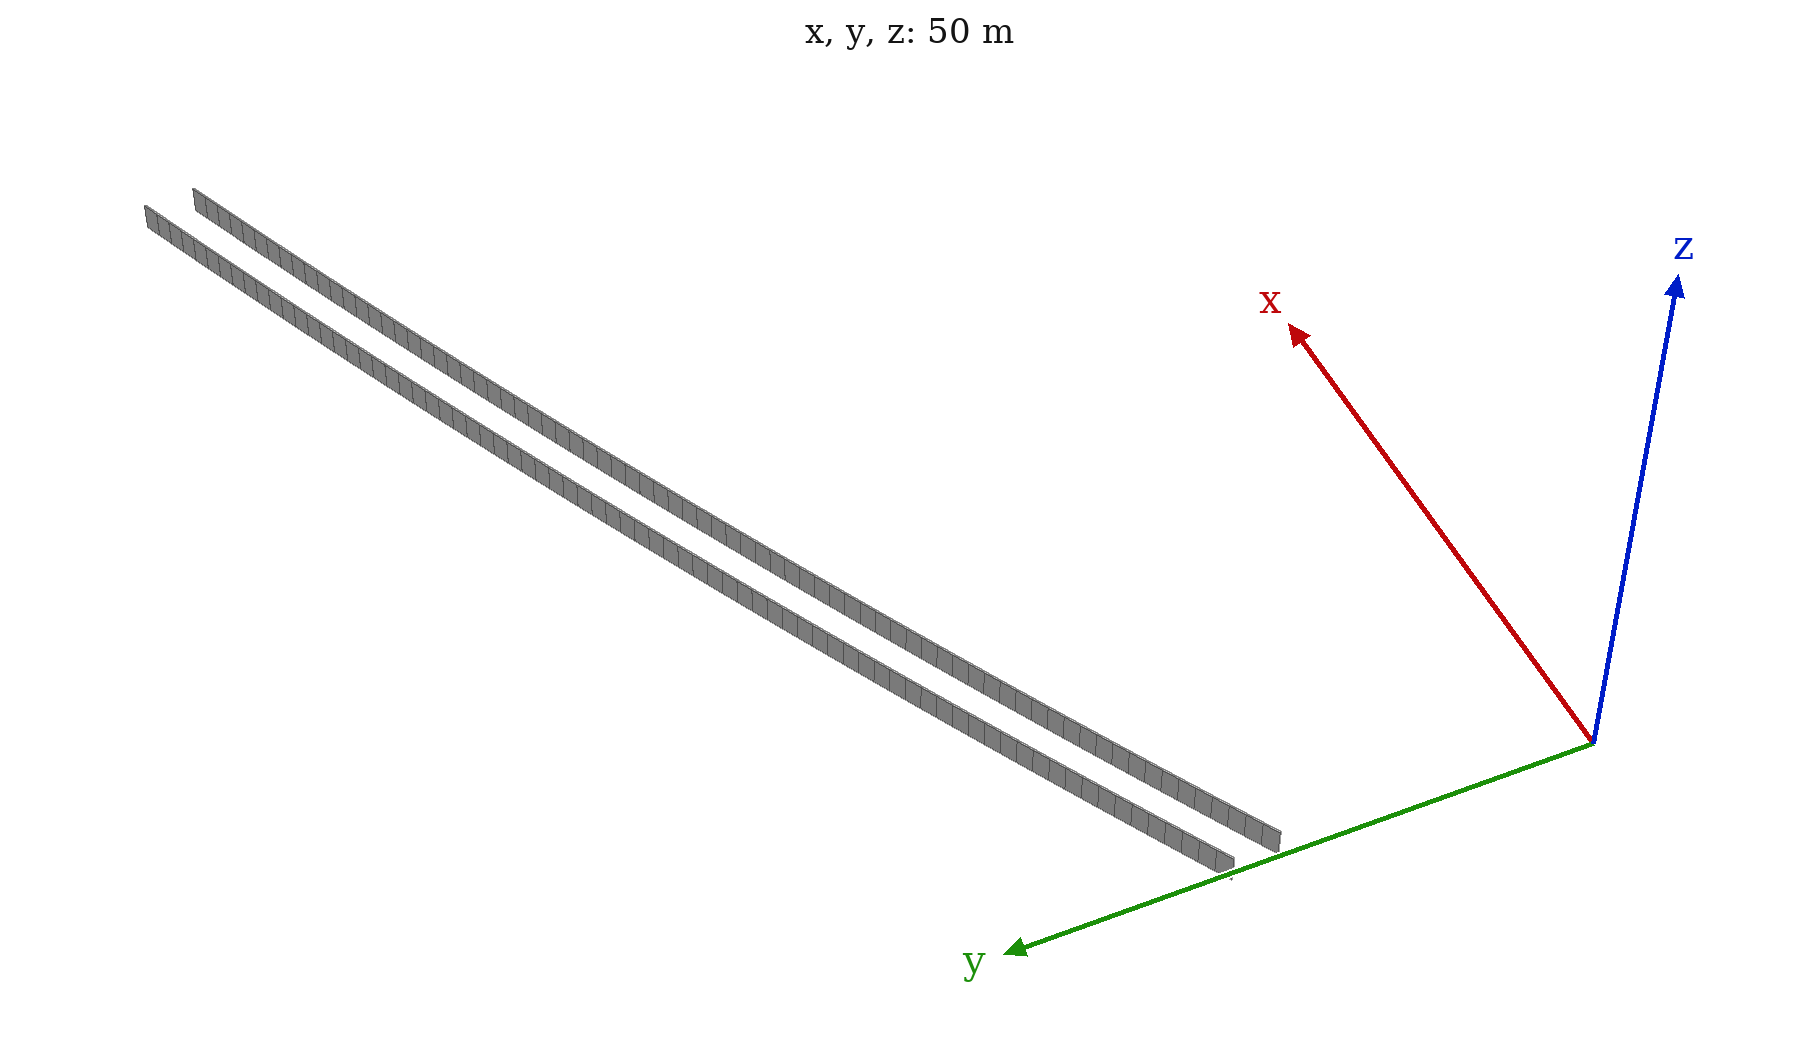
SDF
<sdf version="1.6">
 <model name="sps_0722">
  <static>1</static>
  <allow_auto_disable>0</allow_auto_disable>
  <link name="Wall3167">
   <collision name="collision"><geometry><box><size>1.4966 0.15 2.5</size></box></geometry></collision>
   <visual name="visual">
    <geometry><box><size>1.4966 0.15 2.5</size></box></geometry>
    <transparency>0.0</transparency>
   </visual>
   <pose>99.2956 78.1394 1.25 0 0 -2.72398</pose>
  </link>
  <link name="Wall3168">
   <collision name="collision"><geometry><box><size>1.49636 0.15 2.5</size></box></geometry></collision>
   <visual name="visual">
    <geometry><box><size>1.49636 0.15 2.5</size></box></geometry>
    <transparency>0.0</transparency>
   </visual>
   <pose>97.9282 77.5314 1.25 0 0 -2.72243</pose>
  </link>
  <link name="Wall3169">
   <collision name="collision"><geometry><box><size>1.49648 0.15 2.5</size></box></geometry></collision>
   <visual name="visual">
    <geometry><box><size>1.49648 0.15 2.5</size></box></geometry>
    <transparency>0.0</transparency>
   </visual>
   <pose>96.5619 76.9213 1.25 0 0 -2.72086</pose>
  </link>
  <link name="Wall3170">
   <collision name="collision"><geometry><box><size>1.49656 0.15 2.5</size></box></geometry></collision>
   <visual name="visual">
    <geometry><box><size>1.49656 0.15 2.5</size></box></geometry>
    <transparency>0.0</transparency>
   </visual>
   <pose>95.1964 76.3089 1.25 0 0 -2.71914</pose>
  </link>
  <link name="Wall3171">
   <collision name="collision"><geometry><box><size>1.4965 0.15 2.5</size></box></geometry></collision>
   <visual name="visual">
    <geometry><box><size>1.4965 0.15 2.5</size></box></geometry>
    <transparency>0.0</transparency>
   </visual>
   <pose>93.8319 75.6943 1.25 0 0 -2.71765</pose>
  </link>
  <link name="Wall3172">
   <collision name="collision"><geometry><box><size>1.4966 0.15 2.5</size></box></geometry></collision>
   <visual name="visual">
    <geometry><box><size>1.4966 0.15 2.5</size></box></geometry>
    <transparency>0.0</transparency>
   </visual>
   <pose>92.4683 75.0777 1.25 0 0 -2.7162</pose>
  </link>
  <link name="Wall3173">
   <collision name="collision"><geometry><box><size>1.49647 0.15 2.5</size></box></geometry></collision>
   <visual name="visual">
    <geometry><box><size>1.49647 0.15 2.5</size></box></geometry>
    <transparency>0.0</transparency>
   </visual>
   <pose>91.1056 74.4589 1.25 0 0 -2.71441</pose>
  </link>
  <link name="Wall3174">
   <collision name="collision"><geometry><box><size>1.49659 0.15 2.5</size></box></geometry></collision>
   <visual name="visual">
    <geometry><box><size>1.49659 0.15 2.5</size></box></geometry>
    <transparency>0.0</transparency>
   </visual>
   <pose>89.744 73.8379 1.25 0 0 -2.71297</pose>
  </link>
  <link name="Wall3175">
   <collision name="collision"><geometry><box><size>1.49629 0.15 2.5</size></box></geometry></collision>
   <visual name="visual">
    <geometry><box><size>1.49629 0.15 2.5</size></box></geometry>
    <transparency>0.0</transparency>
   </visual>
   <pose>88.3834 73.2149 1.25 0 0 -2.71144</pose>
  </link>
  <link name="Wall3176">
   <collision name="collision"><geometry><box><size>1.49642 0.15 2.5</size></box></geometry></collision>
   <visual name="visual">
    <geometry><box><size>1.49642 0.15 2.5</size></box></geometry>
    <transparency>0.0</transparency>
   </visual>
   <pose>87.0239 72.5897 1.25 0 0 -2.70969</pose>
  </link>
  <link name="Wall3177">
   <collision name="collision"><geometry><box><size>1.49663 0.15 2.5</size></box></geometry></collision>
   <visual name="visual">
    <geometry><box><size>1.49663 0.15 2.5</size></box></geometry>
    <transparency>0.0</transparency>
   </visual>
   <pose>85.6653 71.9622 1.25 0 0 -2.70813</pose>
  </link>
  <link name="Wall3178">
   <collision name="collision"><geometry><box><size>1.49637 0.15 2.5</size></box></geometry></collision>
   <visual name="visual">
    <geometry><box><size>1.49637 0.15 2.5</size></box></geometry>
    <transparency>0.0</transparency>
   </visual>
   <pose>84.3077 71.3326 1.25 0 0 -2.70657</pose>
  </link>
  <link name="Wall3179">
   <collision name="collision"><geometry><box><size>1.49665 0.15 2.5</size></box></geometry></collision>
   <visual name="visual">
    <geometry><box><size>1.49665 0.15 2.5</size></box></geometry>
    <transparency>0.0</transparency>
   </visual>
   <pose>82.9511 70.7008 1.25 0 0 -2.7049</pose>
  </link>
  <link name="Wall3180">
   <collision name="collision"><geometry><box><size>1.4964 0.15 2.5</size></box></geometry></collision>
   <visual name="visual">
    <geometry><box><size>1.4964 0.15 2.5</size></box></geometry>
    <transparency>0.0</transparency>
   </visual>
   <pose>81.5955 70.0668 1.25 0 0 -2.70334</pose>
  </link>
  <link name="Wall3181">
   <collision name="collision"><geometry><box><size>1.49661 0.15 2.5</size></box></geometry></collision>
   <visual name="visual">
    <geometry><box><size>1.49661 0.15 2.5</size></box></geometry>
    <transparency>0.0</transparency>
   </visual>
   <pose>80.241 69.4307 1.25 0 0 -2.70178</pose>
  </link>
  <link name="Wall3182">
   <collision name="collision"><geometry><box><size>1.4964 0.15 2.5</size></box></geometry></collision>
   <visual name="visual">
    <geometry><box><size>1.4964 0.15 2.5</size></box></geometry>
    <transparency>0.0</transparency>
   </visual>
   <pose>78.8874 68.7925 1.25 0 0 -2.70027</pose>
  </link>
  <link name="Wall3183">
   <collision name="collision"><geometry><box><size>1.49635 0.15 2.5</size></box></geometry></collision>
   <visual name="visual">
    <geometry><box><size>1.49635 0.15 2.5</size></box></geometry>
    <transparency>0.0</transparency>
   </visual>
   <pose>77.5348 68.1523 1.25 0 0 -2.69872</pose>
  </link>
  <link name="Wall3184">
   <collision name="collision"><geometry><box><size>1.49665 0.15 2.5</size></box></geometry></collision>
   <visual name="visual">
    <geometry><box><size>1.49665 0.15 2.5</size></box></geometry>
    <transparency>0.0</transparency>
   </visual>
   <pose>76.1832 67.5099 1.25 0 0 -2.69706</pose>
  </link>
  <link name="Wall3185">
   <collision name="collision"><geometry><box><size>1.49639 0.15 2.5</size></box></geometry></collision>
   <visual name="visual">
    <geometry><box><size>1.49639 0.15 2.5</size></box></geometry>
    <transparency>0.0</transparency>
   </visual>
   <pose>74.8327 66.8653 1.25 0 0 -2.69553</pose>
  </link>
  <link name="Wall3186">
   <collision name="collision"><geometry><box><size>1.49649 0.15 2.5</size></box></geometry></collision>
   <visual name="visual">
    <geometry><box><size>1.49649 0.15 2.5</size></box></geometry>
    <transparency>0.0</transparency>
   </visual>
   <pose>73.4832 66.2186 1.25 0 0 -2.69389</pose>
  </link>
  <link name="Wall3187">
   <collision name="collision"><geometry><box><size>1.49653 0.15 2.5</size></box></geometry></collision>
   <visual name="visual">
    <geometry><box><size>1.49653 0.15 2.5</size></box></geometry>
    <transparency>0.0</transparency>
   </visual>
   <pose>72.1347 65.5697 1.25 0 0 -2.69232</pose>
  </link>
  <link name="Wall3188">
   <collision name="collision"><geometry><box><size>1.49658 0.15 2.5</size></box></geometry></collision>
   <visual name="visual">
    <geometry><box><size>1.49658 0.15 2.5</size></box></geometry>
    <transparency>0.0</transparency>
   </visual>
   <pose>70.7872 64.9186 1.25 0 0 -2.69066</pose>
  </link>
  <link name="Wall3189">
   <collision name="collision"><geometry><box><size>1.49666 0.15 2.5</size></box></geometry></collision>
   <visual name="visual">
    <geometry><box><size>1.49666 0.15 2.5</size></box></geometry>
    <transparency>0.0</transparency>
   </visual>
   <pose>69.4407 64.2653 1.25 0 0 -2.68905</pose>
  </link>
  <link name="Wall3190">
   <collision name="collision"><geometry><box><size>1.49634 0.15 2.5</size></box></geometry></collision>
   <visual name="visual">
    <geometry><box><size>1.49634 0.15 2.5</size></box></geometry>
    <transparency>0.0</transparency>
   </visual>
   <pose>68.0953 63.61 1.25 0 0 -2.68763</pose>
  </link>
  <link name="Wall3191">
   <collision name="collision"><geometry><box><size>1.49651 0.15 2.5</size></box></geometry></collision>
   <visual name="visual">
    <geometry><box><size>1.49651 0.15 2.5</size></box></geometry>
    <transparency>0.0</transparency>
   </visual>
   <pose>66.751 62.9526 1.25 0 0 -2.68592</pose>
  </link>
  <link name="Wall3192">
   <collision name="collision"><geometry><box><size>1.49622 0.15 2.5</size></box></geometry></collision>
   <visual name="visual">
    <geometry><box><size>1.49622 0.15 2.5</size></box></geometry>
    <transparency>0.0</transparency>
   </visual>
   <pose>65.4078 62.2931 1.25 0 0 -2.68446</pose>
  </link>
  <link name="Wall3193">
   <collision name="collision"><geometry><box><size>1.49659 0.15 2.5</size></box></geometry></collision>
   <visual name="visual">
    <geometry><box><size>1.49659 0.15 2.5</size></box></geometry>
    <transparency>0.0</transparency>
   </visual>
   <pose>64.0656 61.6315 1.25 0 0 -2.68276</pose>
  </link>
  <link name="Wall3194">
   <collision name="collision"><geometry><box><size>1.49658 0.15 2.5</size></box></geometry></collision>
   <visual name="visual">
    <geometry><box><size>1.49658 0.15 2.5</size></box></geometry>
    <transparency>0.0</transparency>
   </visual>
   <pose>62.7243 60.9677 1.25 0 0 -2.6813</pose>
  </link>
  <link name="Wall3195">
   <collision name="collision"><geometry><box><size>1.49663 0.15 2.5</size></box></geometry></collision>
   <visual name="visual">
    <geometry><box><size>1.49663 0.15 2.5</size></box></geometry>
    <transparency>0.0</transparency>
   </visual>
   <pose>61.384 60.3018 1.25 0 0 -2.67968</pose>
  </link>
  <link name="Wall3196">
   <collision name="collision"><geometry><box><size>1.49641 0.15 2.5</size></box></geometry></collision>
   <visual name="visual">
    <geometry><box><size>1.49641 0.15 2.5</size></box></geometry>
    <transparency>0.0</transparency>
   </visual>
   <pose>60.0449 59.6337 1.25 0 0 -2.67796</pose>
  </link>
  <link name="Wall3197">
   <collision name="collision"><geometry><box><size>1.49655 0.15 2.5</size></box></geometry></collision>
   <visual name="visual">
    <geometry><box><size>1.49655 0.15 2.5</size></box></geometry>
    <transparency>0.0</transparency>
   </visual>
   <pose>58.7068 58.9635 1.25 0 0 -2.6765</pose>
  </link>
  <link name="Wall3198">
   <collision name="collision"><geometry><box><size>1.49644 0.15 2.5</size></box></geometry></collision>
   <visual name="visual">
    <geometry><box><size>1.49644 0.15 2.5</size></box></geometry>
    <transparency>0.0</transparency>
   </visual>
   <pose>57.3699 58.2912 1.25 0 0 -2.67483</pose>
  </link>
  <link name="Wall3199">
   <collision name="collision"><geometry><box><size>1.49653 0.15 2.5</size></box></geometry></collision>
   <visual name="visual">
    <geometry><box><size>1.49653 0.15 2.5</size></box></geometry>
    <transparency>0.0</transparency>
   </visual>
   <pose>56.034 57.6168 1.25 0 0 -2.67335</pose>
  </link>
  <link name="Wall3200">
   <collision name="collision"><geometry><box><size>1.49652 0.15 2.5</size></box></geometry></collision>
   <visual name="visual">
    <geometry><box><size>1.49652 0.15 2.5</size></box></geometry>
    <transparency>0.0</transparency>
   </visual>
   <pose>54.6991 56.9403 1.25 0 0 -2.67174</pose>
  </link>
  <link name="Wall3201">
   <collision name="collision"><geometry><box><size>1.49656 0.15 2.5</size></box></geometry></collision>
   <visual name="visual">
    <geometry><box><size>1.49656 0.15 2.5</size></box></geometry>
    <transparency>0.0</transparency>
   </visual>
   <pose>53.3653 56.2616 1.25 0 0 -2.67007</pose>
  </link>
  <link name="Wall3202">
   <collision name="collision"><geometry><box><size>1.4965 0.15 2.5</size></box></geometry></collision>
   <visual name="visual">
    <geometry><box><size>1.4965 0.15 2.5</size></box></geometry>
    <transparency>0.0</transparency>
   </visual>
   <pose>52.0326 55.5808 1.25 0 0 -2.66853</pose>
  </link>
  <link name="Wall3203">
   <collision name="collision"><geometry><box><size>1.49644 0.15 2.5</size></box></geometry></collision>
   <visual name="visual">
    <geometry><box><size>1.49644 0.15 2.5</size></box></geometry>
    <transparency>0.0</transparency>
   </visual>
   <pose>50.701 54.8979 1.25 0 0 -2.66691</pose>
  </link>
  <link name="Wall3204">
   <collision name="collision"><geometry><box><size>1.49653 0.15 2.5</size></box></geometry></collision>
   <visual name="visual">
    <geometry><box><size>1.49653 0.15 2.5</size></box></geometry>
    <transparency>0.0</transparency>
   </visual>
   <pose>49.3705 54.2129 1.25 0 0 -2.66538</pose>
  </link>
  <link name="Wall3205">
   <collision name="collision"><geometry><box><size>1.49642 0.15 2.5</size></box></geometry></collision>
   <visual name="visual">
    <geometry><box><size>1.49642 0.15 2.5</size></box></geometry>
    <transparency>0.0</transparency>
   </visual>
   <pose>48.0411 53.5258 1.25 0 0 -2.66374</pose>
  </link>
  <link name="Wall3206">
   <collision name="collision"><geometry><box><size>1.49651 0.15 2.5</size></box></geometry></collision>
   <visual name="visual">
    <geometry><box><size>1.49651 0.15 2.5</size></box></geometry>
    <transparency>0.0</transparency>
   </visual>
   <pose>46.7128 52.8366 1.25 0 0 -2.6622</pose>
  </link>
  <link name="Wall3207">
   <collision name="collision"><geometry><box><size>1.49649 0.15 2.5</size></box></geometry></collision>
   <visual name="visual">
    <geometry><box><size>1.49649 0.15 2.5</size></box></geometry>
    <transparency>0.0</transparency>
   </visual>
   <pose>45.3855 52.1454 1.25 0 0 -2.66073</pose>
  </link>
  <link name="Wall3208">
   <collision name="collision"><geometry><box><size>1.49657 0.15 2.5</size></box></geometry></collision>
   <visual name="visual">
    <geometry><box><size>1.49657 0.15 2.5</size></box></geometry>
    <transparency>0.0</transparency>
   </visual>
   <pose>44.0593 51.452 1.25 0 0 -2.65896</pose>
  </link>
  <link name="Wall3209">
   <collision name="collision"><geometry><box><size>1.49622 0.15 2.5</size></box></geometry></collision>
   <visual name="visual">
    <geometry><box><size>1.49622 0.15 2.5</size></box></geometry>
    <transparency>0.0</transparency>
   </visual>
   <pose>42.7342 50.7566 1.25 0 0 -2.65764</pose>
  </link>
  <link name="Wall3210">
   <collision name="collision"><geometry><box><size>1.49677 0.15 2.5</size></box></geometry></collision>
   <visual name="visual">
    <geometry><box><size>1.49677 0.15 2.5</size></box></geometry>
    <transparency>0.0</transparency>
   </visual>
   <pose>41.4102 50.0591 1.25 0 0 -2.6558</pose>
  </link>
  <link name="Wall3211">
   <collision name="collision"><geometry><box><size>1.49633 0.15 2.5</size></box></geometry></collision>
   <visual name="visual">
    <geometry><box><size>1.49633 0.15 2.5</size></box></geometry>
    <transparency>0.0</transparency>
   </visual>
   <pose>40.0873 49.3594 1.25 0 0 -2.65436</pose>
  </link>
  <link name="Wall3212">
   <collision name="collision"><geometry><box><size>1.49648 0.15 2.5</size></box></geometry></collision>
   <visual name="visual">
    <geometry><box><size>1.49648 0.15 2.5</size></box></geometry>
    <transparency>0.0</transparency>
   </visual>
   <pose>38.7656 48.6577 1.25 0 0 -2.6527</pose>
  </link>
  <link name="Wall3213">
   <collision name="collision"><geometry><box><size>1.49649 0.15 2.5</size></box></geometry></collision>
   <visual name="visual">
    <geometry><box><size>1.49649 0.15 2.5</size></box></geometry>
    <transparency>0.0</transparency>
   </visual>
   <pose>37.4451 47.9538 1.25 0 0 -2.65104</pose>
  </link>
  <link name="Wall3214">
   <collision name="collision"><geometry><box><size>1.49663 0.15 2.5</size></box></geometry></collision>
   <visual name="visual">
    <geometry><box><size>1.49663 0.15 2.5</size></box></geometry>
    <transparency>0.0</transparency>
   </visual>
   <pose>36.1255 47.2477 1.25 0 0 -2.64947</pose>
  </link>
  <link name="Wall3215">
   <collision name="collision"><geometry><box><size>1.4964 0.15 2.5</size></box></geometry></collision>
   <visual name="visual">
    <geometry><box><size>1.4964 0.15 2.5</size></box></geometry>
    <transparency>0.0</transparency>
   </visual>
   <pose>34.8072 46.5396 1.25 0 0 -2.64795</pose>
  </link>
  <link name="Wall3216">
   <collision name="collision"><geometry><box><size>1.49644 0.15 2.5</size></box></geometry></collision>
   <visual name="visual">
    <geometry><box><size>1.49644 0.15 2.5</size></box></geometry>
    <transparency>0.0</transparency>
   </visual>
   <pose>33.49 45.8295 1.25 0 0 -2.64635</pose>
  </link>
  <link name="Wall3217">
   <collision name="collision"><geometry><box><size>1.49652 0.15 2.5</size></box></geometry></collision>
   <visual name="visual">
    <geometry><box><size>1.49652 0.15 2.5</size></box></geometry>
    <transparency>0.0</transparency>
   </visual>
   <pose>32.1739 45.1172 1.25 0 0 -2.64471</pose>
  </link>
  <link name="Wall3218">
   <collision name="collision"><geometry><box><size>1.49668 0.15 2.5</size></box></geometry></collision>
   <visual name="visual">
    <geometry><box><size>1.49668 0.15 2.5</size></box></geometry>
    <transparency>0.0</transparency>
   </visual>
   <pose>30.8588 44.4028 1.25 0 0 -2.64323</pose>
  </link>
  <link name="Wall3219">
   <collision name="collision"><geometry><box><size>1.49636 0.15 2.5</size></box></geometry></collision>
   <visual name="visual">
    <geometry><box><size>1.49636 0.15 2.5</size></box></geometry>
    <transparency>0.0</transparency>
   </visual>
   <pose>29.5449 43.6864 1.25 0 0 -2.64158</pose>
  </link>
  <link name="Wall3220">
   <collision name="collision"><geometry><box><size>1.49647 0.15 2.5</size></box></geometry></collision>
   <visual name="visual">
    <geometry><box><size>1.49647 0.15 2.5</size></box></geometry>
    <transparency>0.0</transparency>
   </visual>
   <pose>28.2322 42.968 1.25 0 0 -2.64009</pose>
  </link>
  <link name="Wall3221">
   <collision name="collision"><geometry><box><size>1.4966 0.15 2.5</size></box></geometry></collision>
   <visual name="visual">
    <geometry><box><size>1.4966 0.15 2.5</size></box></geometry>
    <transparency>0.0</transparency>
   </visual>
   <pose>26.9206 42.2474 1.25 0 0 -2.63832</pose>
  </link>
  <link name="Wall3222">
   <collision name="collision"><geometry><box><size>1.49633 0.15 2.5</size></box></geometry></collision>
   <visual name="visual">
    <geometry><box><size>1.49633 0.15 2.5</size></box></geometry>
    <transparency>0.0</transparency>
   </visual>
   <pose>25.6102 41.5247 1.25 0 0 -2.63687</pose>
  </link>
  <link name="Wall3223">
   <collision name="collision"><geometry><box><size>1.49662 0.15 2.5</size></box></geometry></collision>
   <visual name="visual">
    <geometry><box><size>1.49662 0.15 2.5</size></box></geometry>
    <transparency>0.0</transparency>
   </visual>
   <pose>24.3009 40.8 1.25 0 0 -2.63525</pose>
  </link>
  <link name="Wall3224">
   <collision name="collision"><geometry><box><size>1.49651 0.15 2.5</size></box></geometry></collision>
   <visual name="visual">
    <geometry><box><size>1.49651 0.15 2.5</size></box></geometry>
    <transparency>0.0</transparency>
   </visual>
   <pose>22.9926 40.0732 1.25 0 0 -2.63372</pose>
  </link>
  <link name="Wall3225">
   <collision name="collision"><geometry><box><size>1.49651 0.15 2.5</size></box></geometry></collision>
   <visual name="visual">
    <geometry><box><size>1.49651 0.15 2.5</size></box></geometry>
    <transparency>0.0</transparency>
   </visual>
   <pose>21.6856 39.3443 1.25 0 0 -2.63204</pose>
  </link>
  <link name="Wall3226">
   <collision name="collision"><geometry><box><size>1.49662 0.15 2.5</size></box></geometry></collision>
   <visual name="visual">
    <geometry><box><size>1.49662 0.15 2.5</size></box></geometry>
    <transparency>0.0</transparency>
   </visual>
   <pose>20.3798 38.6133 1.25 0 0 -2.63049</pose>
  </link>
  <link name="Wall3227">
   <collision name="collision"><geometry><box><size>1.49628 0.15 2.5</size></box></geometry></collision>
   <visual name="visual">
    <geometry><box><size>1.49628 0.15 2.5</size></box></geometry>
    <transparency>0.0</transparency>
   </visual>
   <pose>19.0751 37.8804 1.25 0 0 -2.62905</pose>
  </link>
  <link name="Wall3228">
   <collision name="collision"><geometry><box><size>1.49649 0.15 2.5</size></box></geometry></collision>
   <visual name="visual">
    <geometry><box><size>1.49649 0.15 2.5</size></box></geometry>
    <transparency>0.0</transparency>
   </visual>
   <pose>17.7716 37.1455 1.25 0 0 -2.6274</pose>
  </link>
  <link name="Wall3229">
   <collision name="collision"><geometry><box><size>1.49653 0.15 2.5</size></box></geometry></collision>
   <visual name="visual">
    <geometry><box><size>1.49653 0.15 2.5</size></box></geometry>
    <transparency>0.0</transparency>
   </visual>
   <pose>16.4692 36.4084 1.25 0 0 -2.62578</pose>
  </link>
  <link name="Wall3230">
   <collision name="collision"><geometry><box><size>1.4965 0.15 2.5</size></box></geometry></collision>
   <visual name="visual">
    <geometry><box><size>1.4965 0.15 2.5</size></box></geometry>
    <transparency>0.0</transparency>
   </visual>
   <pose>15.168 35.6692 1.25 0 0 -2.62417</pose>
  </link>
  <link name="Wall3231">
   <collision name="collision"><geometry><box><size>1.4964 0.15 2.5</size></box></geometry></collision>
   <visual name="visual">
    <geometry><box><size>1.4964 0.15 2.5</size></box></geometry>
    <transparency>0.0</transparency>
   </visual>
   <pose>13.868 34.928 1.25 0 0 -2.62263</pose>
  </link>
  <link name="Wall3232">
   <collision name="collision"><geometry><box><size>1.49649 0.15 2.5</size></box></geometry></collision>
   <visual name="visual">
    <geometry><box><size>1.49649 0.15 2.5</size></box></geometry>
    <transparency>0.0</transparency>
   </visual>
   <pose>12.5692 34.1847 1.25 0 0 -2.62097</pose>
  </link>
  <link name="Wall3233">
   <collision name="collision"><geometry><box><size>1.49659 0.15 2.5</size></box></geometry></collision>
   <visual name="visual">
    <geometry><box><size>1.49659 0.15 2.5</size></box></geometry>
    <transparency>0.0</transparency>
   </visual>
   <pose>11.2715 33.4393 1.25 0 0 -2.61946</pose>
  </link>
  <link name="Wall3234">
   <collision name="collision"><geometry><box><size>1.49653 0.15 2.5</size></box></geometry></collision>
   <visual name="visual">
    <geometry><box><size>1.49653 0.15 2.5</size></box></geometry>
    <transparency>0.0</transparency>
   </visual>
   <pose>9.97497 32.6918 1.25 0 0 -2.61774</pose>
  </link>
  <link name="Wall3235">
   <collision name="collision"><geometry><box><size>1.49639 0.15 2.5</size></box></geometry></collision>
   <visual name="visual">
    <geometry><box><size>1.49639 0.15 2.5</size></box></geometry>
    <transparency>0.0</transparency>
   </visual>
   <pose>8.67974 31.9423 1.25 0 0 -2.61627</pose>
  </link>
  <link name="Wall3236">
   <collision name="collision"><geometry><box><size>1.49659 0.15 2.5</size></box></geometry></collision>
   <visual name="visual">
    <geometry><box><size>1.49659 0.15 2.5</size></box></geometry>
    <transparency>0.0</transparency>
   </visual>
   <pose>7.38564 31.1908 1.25 0 0 -2.61465</pose>
  </link>
  <link name="Wall3237">
   <collision name="collision"><geometry><box><size>1.49627 0.15 2.5</size></box></geometry></collision>
   <visual name="visual">
    <geometry><box><size>1.49627 0.15 2.5</size></box></geometry>
    <transparency>0.0</transparency>
   </visual>
   <pose>6.09277 30.4373 1.25 0 0 -2.61316</pose>
  </link>
  <link name="Wall3238">
   <collision name="collision"><geometry><box><size>1.49663 0.15 2.5</size></box></geometry></collision>
   <visual name="visual">
    <geometry><box><size>1.49663 0.15 2.5</size></box></geometry>
    <transparency>0.0</transparency>
   </visual>
   <pose>4.80108 29.6817 1.25 0 0 -2.61145</pose>
  </link>
  <link name="Wall3239">
   <collision name="collision"><geometry><box><size>1.49656 0.15 2.5</size></box></geometry></collision>
   <visual name="visual">
    <geometry><box><size>1.49656 0.15 2.5</size></box></geometry>
    <transparency>0.0</transparency>
   </visual>
   <pose>3.51046 28.924 1.25 0 0 -2.61001</pose>
  </link>
  <link name="Wall3240">
   <collision name="collision"><geometry><box><size>1.49641 0.15 2.5</size></box></geometry></collision>
   <visual name="visual">
    <geometry><box><size>1.49641 0.15 2.5</size></box></geometry>
    <transparency>0.0</transparency>
   </visual>
   <pose>2.22115 28.1643 1.25 0 0 -2.60825</pose>
  </link>
  <link name="Wall3241">
   <collision name="collision"><geometry><box><size>1.4966 0.15 2.5</size></box></geometry></collision>
   <visual name="visual">
    <geometry><box><size>1.4966 0.15 2.5</size></box></geometry>
    <transparency>0.0</transparency>
   </visual>
   <pose>0.933067 27.4025 1.25 0 0 -2.60675</pose>
  </link>
  <link name="Wall5777">
   <collision name="collision"><geometry><box><size>1.50302 0.15 2.5</size></box></geometry></collision>
   <visual name="visual">
    <geometry><box><size>1.50302 0.15 2.5</size></box></geometry>
    <transparency>0.0</transparency>
   </visual>
   <pose>98.9828 82.5284 1.25 0 0 -2.72556</pose>
  </link>
  <link name="Wall5778">
   <collision name="collision"><geometry><box><size>1.50313 0.15 2.5</size></box></geometry></collision>
   <visual name="visual">
    <geometry><box><size>1.50313 0.15 2.5</size></box></geometry>
    <transparency>0.0</transparency>
   </visual>
   <pose>97.6085 81.9199 1.25 0 0 -2.72399</pose>
  </link>
  <link name="Wall5779">
   <collision name="collision"><geometry><box><size>1.50311 0.15 2.5</size></box></geometry></collision>
   <visual name="visual">
    <geometry><box><size>1.50311 0.15 2.5</size></box></geometry>
    <transparency>0.0</transparency>
   </visual>
   <pose>96.235 81.3092 1.25 0 0 -2.72243</pose>
  </link>
  <link name="Wall5780">
   <collision name="collision"><geometry><box><size>1.50314 0.15 2.5</size></box></geometry></collision>
   <visual name="visual">
    <geometry><box><size>1.50314 0.15 2.5</size></box></geometry>
    <transparency>0.0</transparency>
   </visual>
   <pose>94.8625 80.6963 1.25 0 0 -2.7208</pose>
  </link>
  <link name="Wall5781">
   <collision name="collision"><geometry><box><size>1.50315 0.15 2.5</size></box></geometry></collision>
   <visual name="visual">
    <geometry><box><size>1.50315 0.15 2.5</size></box></geometry>
    <transparency>0.0</transparency>
   </visual>
   <pose>93.491 80.0812 1.25 0 0 -2.7192</pose>
  </link>
  <link name="Wall5782">
   <collision name="collision"><geometry><box><size>1.5031 0.15 2.5</size></box></geometry></collision>
   <visual name="visual">
    <geometry><box><size>1.5031 0.15 2.5</size></box></geometry>
    <transparency>0.0</transparency>
   </visual>
   <pose>92.1204 79.4639 1.25 0 0 -2.71758</pose>
  </link>
  <link name="Wall5783">
   <collision name="collision"><geometry><box><size>1.50302 0.15 2.5</size></box></geometry></collision>
   <visual name="visual">
    <geometry><box><size>1.50302 0.15 2.5</size></box></geometry>
    <transparency>0.0</transparency>
   </visual>
   <pose>90.7509 78.8445 1.25 0 0 -2.71613</pose>
  </link>
  <link name="Wall5784">
   <collision name="collision"><geometry><box><size>1.50301 0.15 2.5</size></box></geometry></collision>
   <visual name="visual">
    <geometry><box><size>1.50301 0.15 2.5</size></box></geometry>
    <transparency>0.0</transparency>
   </visual>
   <pose>89.3824 78.223 1.25 0 0 -2.71447</pose>
  </link>
  <link name="Wall5785">
   <collision name="collision"><geometry><box><size>1.50295 0.15 2.5</size></box></geometry></collision>
   <visual name="visual">
    <geometry><box><size>1.50295 0.15 2.5</size></box></geometry>
    <transparency>0.0</transparency>
   </visual>
   <pose>88.0149 77.5994 1.25 0 0 -2.71299</pose>
  </link>
  <link name="Wall5786">
   <collision name="collision"><geometry><box><size>1.5032 0.15 2.5</size></box></geometry></collision>
   <visual name="visual">
    <geometry><box><size>1.5032 0.15 2.5</size></box></geometry>
    <transparency>0.0</transparency>
   </visual>
   <pose>86.6483 76.9736 1.25 0 0 -2.71136</pose>
  </link>
  <link name="Wall5787">
   <collision name="collision"><geometry><box><size>1.50303 0.15 2.5</size></box></geometry></collision>
   <visual name="visual">
    <geometry><box><size>1.50303 0.15 2.5</size></box></geometry>
    <transparency>0.0</transparency>
   </visual>
   <pose>85.2827 76.3455 1.25 0 0 -2.70966</pose>
  </link>
  <link name="Wall5788">
   <collision name="collision"><geometry><box><size>1.50299 0.15 2.5</size></box></geometry></collision>
   <visual name="visual">
    <geometry><box><size>1.50299 0.15 2.5</size></box></geometry>
    <transparency>0.0</transparency>
   </visual>
   <pose>83.9182 75.7153 1.25 0 0 -2.70817</pose>
  </link>
  <link name="Wall5789">
   <collision name="collision"><geometry><box><size>1.50322 0.15 2.5</size></box></geometry></collision>
   <visual name="visual">
    <geometry><box><size>1.50322 0.15 2.5</size></box></geometry>
    <transparency>0.0</transparency>
   </visual>
   <pose>82.5546 75.0829 1.25 0 0 -2.70649</pose>
  </link>
  <link name="Wall5790">
   <collision name="collision"><geometry><box><size>1.50299 0.15 2.5</size></box></geometry></collision>
   <visual name="visual">
    <geometry><box><size>1.50299 0.15 2.5</size></box></geometry>
    <transparency>0.0</transparency>
   </visual>
   <pose>81.1921 74.4483 1.25 0 0 -2.70499</pose>
  </link>
  <link name="Wall5791">
   <collision name="collision"><geometry><box><size>1.50323 0.15 2.5</size></box></geometry></collision>
   <visual name="visual">
    <geometry><box><size>1.50323 0.15 2.5</size></box></geometry>
    <transparency>0.0</transparency>
   </visual>
   <pose>79.8305 73.8116 1.25 0 0 -2.70341</pose>
  </link>
  <link name="Wall5792">
   <collision name="collision"><geometry><box><size>1.50306 0.15 2.5</size></box></geometry></collision>
   <visual name="visual">
    <geometry><box><size>1.50306 0.15 2.5</size></box></geometry>
    <transparency>0.0</transparency>
   </visual>
   <pose>78.4699 73.1727 1.25 0 0 -2.70174</pose>
  </link>
  <link name="Wall5793">
   <collision name="collision"><geometry><box><size>1.50301 0.15 2.5</size></box></geometry></collision>
   <visual name="visual">
    <geometry><box><size>1.50301 0.15 2.5</size></box></geometry>
    <transparency>0.0</transparency>
   </visual>
   <pose>77.1104 72.5317 1.25 0 0 -2.70028</pose>
  </link>
  <link name="Wall5794">
   <collision name="collision"><geometry><box><size>1.50309 0.15 2.5</size></box></geometry></collision>
   <visual name="visual">
    <geometry><box><size>1.50309 0.15 2.5</size></box></geometry>
    <transparency>0.0</transparency>
   </visual>
   <pose>75.7519 71.8886 1.25 0 0 -2.69865</pose>
  </link>
  <link name="Wall5795">
   <collision name="collision"><geometry><box><size>1.50317 0.15 2.5</size></box></geometry></collision>
   <visual name="visual">
    <geometry><box><size>1.50317 0.15 2.5</size></box></geometry>
    <transparency>0.0</transparency>
   </visual>
   <pose>74.3943 71.2432 1.25 0 0 -2.69692</pose>
  </link>
  <link name="Wall5796">
   <collision name="collision"><geometry><box><size>1.50308 0.15 2.5</size></box></geometry></collision>
   <visual name="visual">
    <geometry><box><size>1.50308 0.15 2.5</size></box></geometry>
    <transparency>0.0</transparency>
   </visual>
   <pose>73.0379 70.5956 1.25 0 0 -2.69545</pose>
  </link>
  <link name="Wall5797">
   <collision name="collision"><geometry><box><size>1.50315 0.15 2.5</size></box></geometry></collision>
   <visual name="visual">
    <geometry><box><size>1.50315 0.15 2.5</size></box></geometry>
    <transparency>0.0</transparency>
   </visual>
   <pose>71.6824 69.946 1.25 0 0 -2.69394</pose>
  </link>
  <link name="Wall5798">
   <collision name="collision"><geometry><box><size>1.50292 0.15 2.5</size></box></geometry></collision>
   <visual name="visual">
    <geometry><box><size>1.50292 0.15 2.5</size></box></geometry>
    <transparency>0.0</transparency>
   </visual>
   <pose>70.328 69.2943 1.25 0 0 -2.69229</pose>
  </link>
  <link name="Wall5799">
   <collision name="collision"><geometry><box><size>1.50308 0.15 2.5</size></box></geometry></collision>
   <visual name="visual">
    <geometry><box><size>1.50308 0.15 2.5</size></box></geometry>
    <transparency>0.0</transparency>
   </visual>
   <pose>68.9747 68.6404 1.25 0 0 -2.69068</pose>
  </link>
  <link name="Wall5800">
   <collision name="collision"><geometry><box><size>1.503 0.15 2.5</size></box></geometry></collision>
   <visual name="visual">
    <geometry><box><size>1.503 0.15 2.5</size></box></geometry>
    <transparency>0.0</transparency>
   </visual>
   <pose>67.6223 67.9844 1.25 0 0 -2.68921</pose>
  </link>
  <link name="Wall5801">
   <collision name="collision"><geometry><box><size>1.50314 0.15 2.5</size></box></geometry></collision>
   <visual name="visual">
    <geometry><box><size>1.50314 0.15 2.5</size></box></geometry>
    <transparency>0.0</transparency>
   </visual>
   <pose>66.271 67.3262 1.25 0 0 -2.68744</pose>
  </link>
  <link name="Wall5802">
   <collision name="collision"><geometry><box><size>1.50287 0.15 2.5</size></box></geometry></collision>
   <visual name="visual">
    <geometry><box><size>1.50287 0.15 2.5</size></box></geometry>
    <transparency>0.0</transparency>
   </visual>
   <pose>64.9209 66.6659 1.25 0 0 -2.68605</pose>
  </link>
  <link name="Wall5803">
   <collision name="collision"><geometry><box><size>1.50321 0.15 2.5</size></box></geometry></collision>
   <visual name="visual">
    <geometry><box><size>1.50321 0.15 2.5</size></box></geometry>
    <transparency>0.0</transparency>
   </visual>
   <pose>63.5716 66.0035 1.25 0 0 -2.68439</pose>
  </link>
  <link name="Wall5804">
   <collision name="collision"><geometry><box><size>1.503 0.15 2.5</size></box></geometry></collision>
   <visual name="visual">
    <geometry><box><size>1.503 0.15 2.5</size></box></geometry>
    <transparency>0.0</transparency>
   </visual>
   <pose>62.2234 65.3389 1.25 0 0 -2.68283</pose>
  </link>
  <link name="Wall5805">
   <collision name="collision"><geometry><box><size>1.50308 0.15 2.5</size></box></geometry></collision>
   <visual name="visual">
    <geometry><box><size>1.50308 0.15 2.5</size></box></geometry>
    <transparency>0.0</transparency>
   </visual>
   <pose>60.8764 64.6722 1.25 0 0 -2.68118</pose>
  </link>
  <link name="Wall5806">
   <collision name="collision"><geometry><box><size>1.50312 0.15 2.5</size></box></geometry></collision>
   <visual name="visual">
    <geometry><box><size>1.50312 0.15 2.5</size></box></geometry>
    <transparency>0.0</transparency>
   </visual>
   <pose>59.5303 64.0034 1.25 0 0 -2.67974</pose>
  </link>
  <link name="Wall5807">
   <collision name="collision"><geometry><box><size>1.50304 0.15 2.5</size></box></geometry></collision>
   <visual name="visual">
    <geometry><box><size>1.50304 0.15 2.5</size></box></geometry>
    <transparency>0.0</transparency>
   </visual>
   <pose>58.1853 63.3324 1.25 0 0 -2.67795</pose>
  </link>
  <link name="Wall5808">
   <collision name="collision"><geometry><box><size>1.50312 0.15 2.5</size></box></geometry></collision>
   <visual name="visual">
    <geometry><box><size>1.50312 0.15 2.5</size></box></geometry>
    <transparency>0.0</transparency>
   </visual>
   <pose>56.8414 62.6592 1.25 0 0 -2.67647</pose>
  </link>
  <link name="Wall5809">
   <collision name="collision"><geometry><box><size>1.50318 0.15 2.5</size></box></geometry></collision>
   <visual name="visual">
    <geometry><box><size>1.50318 0.15 2.5</size></box></geometry>
    <transparency>0.0</transparency>
   </visual>
   <pose>55.4984 61.9839 1.25 0 0 -2.67486</pose>
  </link>
  <link name="Wall5810">
   <collision name="collision"><geometry><box><size>1.503 0.15 2.5</size></box></geometry></collision>
   <visual name="visual">
    <geometry><box><size>1.503 0.15 2.5</size></box></geometry>
    <transparency>0.0</transparency>
   </visual>
   <pose>54.1566 61.3065 1.25 0 0 -2.6733</pose>
  </link>
  <link name="Wall5811">
   <collision name="collision"><geometry><box><size>1.50312 0.15 2.5</size></box></geometry></collision>
   <visual name="visual">
    <geometry><box><size>1.50312 0.15 2.5</size></box></geometry>
    <transparency>0.0</transparency>
   </visual>
   <pose>52.8159 60.627 1.25 0 0 -2.6717</pose>
  </link>
  <link name="Wall5812">
   <collision name="collision"><geometry><box><size>1.5032 0.15 2.5</size></box></geometry></collision>
   <visual name="visual">
    <geometry><box><size>1.5032 0.15 2.5</size></box></geometry>
    <transparency>0.0</transparency>
   </visual>
   <pose>51.4762 59.9453 1.25 0 0 -2.67008</pose>
  </link>
  <link name="Wall5813">
   <collision name="collision"><geometry><box><size>1.50308 0.15 2.5</size></box></geometry></collision>
   <visual name="visual">
    <geometry><box><size>1.50308 0.15 2.5</size></box></geometry>
    <transparency>0.0</transparency>
   </visual>
   <pose>50.1377 59.2615 1.25 0 0 -2.66854</pose>
  </link>
  <link name="Wall5814">
   <collision name="collision"><geometry><box><size>1.503 0.15 2.5</size></box></geometry></collision>
   <visual name="visual">
    <geometry><box><size>1.503 0.15 2.5</size></box></geometry>
    <transparency>0.0</transparency>
   </visual>
   <pose>48.8003 58.5756 1.25 0 0 -2.66687</pose>
  </link>
  <link name="Wall5815">
   <collision name="collision"><geometry><box><size>1.50302 0.15 2.5</size></box></geometry></collision>
   <visual name="visual">
    <geometry><box><size>1.50302 0.15 2.5</size></box></geometry>
    <transparency>0.0</transparency>
   </visual>
   <pose>47.464 57.8876 1.25 0 0 -2.66541</pose>
  </link>
  <link name="Wall5816">
   <collision name="collision"><geometry><box><size>1.50314 0.15 2.5</size></box></geometry></collision>
   <visual name="visual">
    <geometry><box><size>1.50314 0.15 2.5</size></box></geometry>
    <transparency>0.0</transparency>
   </visual>
   <pose>46.1287 57.1975 1.25 0 0 -2.66376</pose>
  </link>
  <link name="Wall5817">
   <collision name="collision"><geometry><box><size>1.50309 0.15 2.5</size></box></geometry></collision>
   <visual name="visual">
    <geometry><box><size>1.50309 0.15 2.5</size></box></geometry>
    <transparency>0.0</transparency>
   </visual>
   <pose>44.7945 56.5052 1.25 0 0 -2.66215</pose>
  </link>
  <link name="Wall5818">
   <collision name="collision"><geometry><box><size>1.50313 0.15 2.5</size></box></geometry></collision>
   <visual name="visual">
    <geometry><box><size>1.50313 0.15 2.5</size></box></geometry>
    <transparency>0.0</transparency>
   </visual>
   <pose>43.4614 55.8108 1.25 0 0 -2.6606</pose>
  </link>
  <link name="Wall5819">
   <collision name="collision"><geometry><box><size>1.50292 0.15 2.5</size></box></geometry></collision>
   <visual name="visual">
    <geometry><box><size>1.50292 0.15 2.5</size></box></geometry>
    <transparency>0.0</transparency>
   </visual>
   <pose>42.1294 55.1145 1.25 0 0 -2.6592</pose>
  </link>
  <link name="Wall5820">
   <collision name="collision"><geometry><box><size>1.50311 0.15 2.5</size></box></geometry></collision>
   <visual name="visual">
    <geometry><box><size>1.50311 0.15 2.5</size></box></geometry>
    <transparency>0.0</transparency>
   </visual>
   <pose>40.7985 54.4161 1.25 0 0 -2.65748</pose>
  </link>
  <link name="Wall5821">
   <collision name="collision"><geometry><box><size>1.50311 0.15 2.5</size></box></geometry></collision>
   <visual name="visual">
    <geometry><box><size>1.50311 0.15 2.5</size></box></geometry>
    <transparency>0.0</transparency>
   </visual>
   <pose>39.4687 53.7154 1.25 0 0 -2.65582</pose>
  </link>
  <link name="Wall5822">
   <collision name="collision"><geometry><box><size>1.50309 0.15 2.5</size></box></geometry></collision>
   <visual name="visual">
    <geometry><box><size>1.50309 0.15 2.5</size></box></geometry>
    <transparency>0.0</transparency>
   </visual>
   <pose>38.14 53.0125 1.25 0 0 -2.65412</pose>
  </link>
  <link name="Wall5823">
   <collision name="collision"><geometry><box><size>1.503 0.15 2.5</size></box></geometry></collision>
   <visual name="visual">
    <geometry><box><size>1.503 0.15 2.5</size></box></geometry>
    <transparency>0.0</transparency>
   </visual>
   <pose>36.8126 52.3076 1.25 0 0 -2.65275</pose>
  </link>
  <link name="Wall5824">
   <collision name="collision"><geometry><box><size>1.5031 0.15 2.5</size></box></geometry></collision>
   <visual name="visual">
    <geometry><box><size>1.5031 0.15 2.5</size></box></geometry>
    <transparency>0.0</transparency>
   </visual>
   <pose>35.4862 51.6006 1.25 0 0 -2.65099</pose>
  </link>
  <link name="Wall5825">
   <collision name="collision"><geometry><box><size>1.50318 0.15 2.5</size></box></geometry></collision>
   <visual name="visual">
    <geometry><box><size>1.50318 0.15 2.5</size></box></geometry>
    <transparency>0.0</transparency>
   </visual>
   <pose>34.1608 50.8914 1.25 0 0 -2.6495</pose>
  </link>
  <link name="Wall5826">
   <collision name="collision"><geometry><box><size>1.50303 0.15 2.5</size></box></geometry></collision>
   <visual name="visual">
    <geometry><box><size>1.50303 0.15 2.5</size></box></geometry>
    <transparency>0.0</transparency>
   </visual>
   <pose>32.8366 50.1802 1.25 0 0 -2.64798</pose>
  </link>
  <link name="Wall5827">
   <collision name="collision"><geometry><box><size>1.50319 0.15 2.5</size></box></geometry></collision>
   <visual name="visual">
    <geometry><box><size>1.50319 0.15 2.5</size></box></geometry>
    <transparency>0.0</transparency>
   </visual>
   <pose>31.5135 49.4669 1.25 0 0 -2.64633</pose>
  </link>
  <link name="Wall5828">
   <collision name="collision"><geometry><box><size>1.50297 0.15 2.5</size></box></geometry></collision>
   <visual name="visual">
    <geometry><box><size>1.50297 0.15 2.5</size></box></geometry>
    <transparency>0.0</transparency>
   </visual>
   <pose>30.1916 48.7515 1.25 0 0 -2.64472</pose>
  </link>
  <link name="Wall5829">
   <collision name="collision"><geometry><box><size>1.50315 0.15 2.5</size></box></geometry></collision>
   <visual name="visual">
    <geometry><box><size>1.50315 0.15 2.5</size></box></geometry>
    <transparency>0.0</transparency>
   </visual>
   <pose>28.8708 48.0341 1.25 0 0 -2.64331</pose>
  </link>
  <link name="Wall5830">
   <collision name="collision"><geometry><box><size>1.50297 0.15 2.5</size></box></geometry></collision>
   <visual name="visual">
    <geometry><box><size>1.50297 0.15 2.5</size></box></geometry>
    <transparency>0.0</transparency>
   </visual>
   <pose>27.5512 47.3146 1.25 0 0 -2.64158</pose>
  </link>
  <link name="Wall5831">
   <collision name="collision"><geometry><box><size>1.50322 0.15 2.5</size></box></geometry></collision>
   <visual name="visual">
    <geometry><box><size>1.50322 0.15 2.5</size></box></geometry>
    <transparency>0.0</transparency>
   </visual>
   <pose>26.2327 46.5929 1.25 0 0 -2.64</pose>
  </link>
  <link name="Wall5832">
   <collision name="collision"><geometry><box><size>1.50294 0.15 2.5</size></box></geometry></collision>
   <visual name="visual">
    <geometry><box><size>1.50294 0.15 2.5</size></box></geometry>
    <transparency>0.0</transparency>
   </visual>
   <pose>24.9153 45.8691 1.25 0 0 -2.63832</pose>
  </link>
  <link name="Wall5833">
   <collision name="collision"><geometry><box><size>1.50327 0.15 2.5</size></box></geometry></collision>
   <visual name="visual">
    <geometry><box><size>1.50327 0.15 2.5</size></box></geometry>
    <transparency>0.0</transparency>
   </visual>
   <pose>23.5991 45.1432 1.25 0 0 -2.63682</pose>
  </link>
  <link name="Wall5834">
   <collision name="collision"><geometry><box><size>1.50302 0.15 2.5</size></box></geometry></collision>
   <visual name="visual">
    <geometry><box><size>1.50302 0.15 2.5</size></box></geometry>
    <transparency>0.0</transparency>
   </visual>
   <pose>22.284 44.4152 1.25 0 0 -2.6352</pose>
  </link>
  <link name="Wall5835">
   <collision name="collision"><geometry><box><size>1.50312 0.15 2.5</size></box></geometry></collision>
   <visual name="visual">
    <geometry><box><size>1.50312 0.15 2.5</size></box></geometry>
    <transparency>0.0</transparency>
   </visual>
   <pose>20.9701 43.6852 1.25 0 0 -2.63375</pose>
  </link>
  <link name="Wall5836">
   <collision name="collision"><geometry><box><size>1.50297 0.15 2.5</size></box></geometry></collision>
   <visual name="visual">
    <geometry><box><size>1.50297 0.15 2.5</size></box></geometry>
    <transparency>0.0</transparency>
   </visual>
   <pose>19.6573 42.9533 1.25 0 0 -2.63225</pose>
  </link>
  <link name="Wall5837">
   <collision name="collision"><geometry><box><size>1.50313 0.15 2.5</size></box></geometry></collision>
   <visual name="visual">
    <geometry><box><size>1.50313 0.15 2.5</size></box></geometry>
    <transparency>0.0</transparency>
   </visual>
   <pose>18.3458 42.2192 1.25 0 0 -2.6304</pose>
  </link>
  <link name="Wall5838">
   <collision name="collision"><geometry><box><size>1.50304 0.15 2.5</size></box></geometry></collision>
   <visual name="visual">
    <geometry><box><size>1.50304 0.15 2.5</size></box></geometry>
    <transparency>0.0</transparency>
   </visual>
   <pose>17.0354 41.4829 1.25 0 0 -2.62893</pose>
  </link>
  <link name="Wall5839">
   <collision name="collision"><geometry><box><size>1.50303 0.15 2.5</size></box></geometry></collision>
   <visual name="visual">
    <geometry><box><size>1.50303 0.15 2.5</size></box></geometry>
    <transparency>0.0</transparency>
   </visual>
   <pose>15.7262 40.7446 1.25 0 0 -2.62729</pose>
  </link>
  <link name="Wall5840">
   <collision name="collision"><geometry><box><size>1.50317 0.15 2.5</size></box></geometry></collision>
   <visual name="visual">
    <geometry><box><size>1.50317 0.15 2.5</size></box></geometry>
    <transparency>0.0</transparency>
   </visual>
   <pose>14.4181 40.0042 1.25 0 0 -2.62581</pose>
  </link>
  <link name="Wall5841">
   <collision name="collision"><geometry><box><size>1.50295 0.15 2.5</size></box></geometry></collision>
   <visual name="visual">
    <geometry><box><size>1.50295 0.15 2.5</size></box></geometry>
    <transparency>0.0</transparency>
   </visual>
   <pose>13.1111 39.2618 1.25 0 0 -2.62418</pose>
  </link>
  <link name="Wall5842">
   <collision name="collision"><geometry><box><size>1.50297 0.15 2.5</size></box></geometry></collision>
   <visual name="visual">
    <geometry><box><size>1.50297 0.15 2.5</size></box></geometry>
    <transparency>0.0</transparency>
   </visual>
   <pose>11.8055 38.5173 1.25 0 0 -2.62251</pose>
  </link>
  <link name="Wall5843">
   <collision name="collision"><geometry><box><size>1.50329 0.15 2.5</size></box></geometry></collision>
   <visual name="visual">
    <geometry><box><size>1.50329 0.15 2.5</size></box></geometry>
    <transparency>0.0</transparency>
   </visual>
   <pose>10.5009 37.7707 1.25 0 0 -2.62108</pose>
  </link>
  <link name="Wall5844">
   <collision name="collision"><geometry><box><size>1.50304 0.15 2.5</size></box></geometry></collision>
   <visual name="visual">
    <geometry><box><size>1.50304 0.15 2.5</size></box></geometry>
    <transparency>0.0</transparency>
   </visual>
   <pose>9.19744 37.0221 1.25 0 0 -2.61949</pose>
  </link>
  <link name="Wall5845">
   <collision name="collision"><geometry><box><size>1.50308 0.15 2.5</size></box></geometry></collision>
   <visual name="visual">
    <geometry><box><size>1.50308 0.15 2.5</size></box></geometry>
    <transparency>0.0</transparency>
   </visual>
   <pose>7.89526 36.2714 1.25 0 0 -2.61782</pose>
  </link>
  <link name="Wall5846">
   <collision name="collision"><geometry><box><size>1.50296 0.15 2.5</size></box></geometry></collision>
   <visual name="visual">
    <geometry><box><size>1.50296 0.15 2.5</size></box></geometry>
    <transparency>0.0</transparency>
   </visual>
   <pose>6.59435 35.5186 1.25 0 0 -2.61618</pose>
  </link>
  <link name="Wall5847">
   <collision name="collision"><geometry><box><size>1.5032 0.15 2.5</size></box></geometry></collision>
   <visual name="visual">
    <geometry><box><size>1.5032 0.15 2.5</size></box></geometry>
    <transparency>0.0</transparency>
   </visual>
   <pose>5.29455 34.7638 1.25 0 0 -2.61477</pose>
  </link>
  <link name="Wall5848">
   <collision name="collision"><geometry><box><size>1.50309 0.15 2.5</size></box></geometry></collision>
   <visual name="visual">
    <geometry><box><size>1.50309 0.15 2.5</size></box></geometry>
    <transparency>0.0</transparency>
   </visual>
   <pose>3.99587 34.0069 1.25 0 0 -2.61303</pose>
  </link>
  <link name="Wall5849">
   <collision name="collision"><geometry><box><size>1.50311 0.15 2.5</size></box></geometry></collision>
   <visual name="visual">
    <geometry><box><size>1.50311 0.15 2.5</size></box></geometry>
    <transparency>0.0</transparency>
   </visual>
   <pose>2.69848 33.2479 1.25 0 0 -2.61149</pose>
  </link>
  <link name="Wall5850">
   <collision name="collision"><geometry><box><size>1.50317 0.15 2.5</size></box></geometry></collision>
   <visual name="visual">
    <geometry><box><size>1.50317 0.15 2.5</size></box></geometry>
    <transparency>0.0</transparency>
   </visual>
   <pose>1.40227 32.4868 1.25 0 0 -2.60982</pose>
  </link>
  <link name="Wall5851">
   <collision name="collision"><geometry><box><size>1.50307 0.15 2.5</size></box></geometry></collision>
   <visual name="visual">
    <geometry><box><size>1.50307 0.15 2.5</size></box></geometry>
    <transparency>0.0</transparency>
   </visual>
   <pose>0.107261 31.7237 1.25 0 0 -2.60841</pose>
  </link>
 </model>
</sdf>
